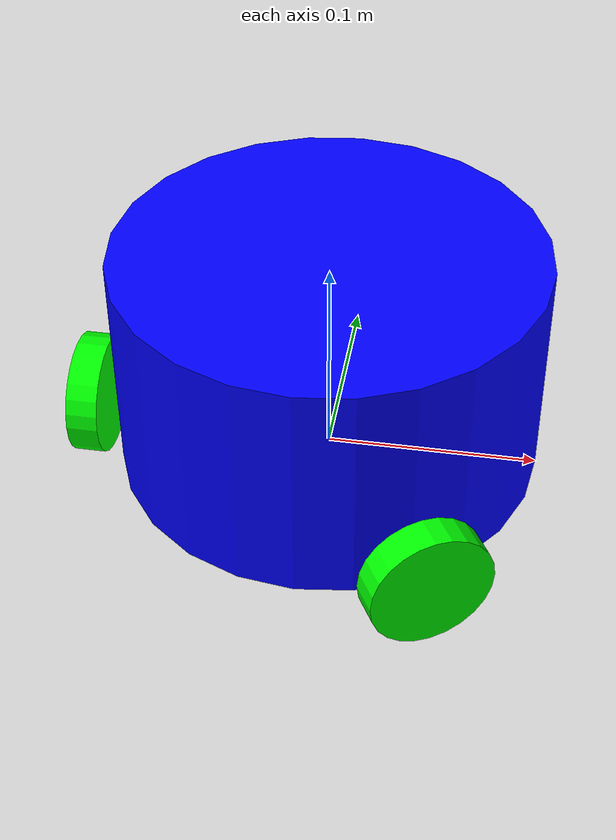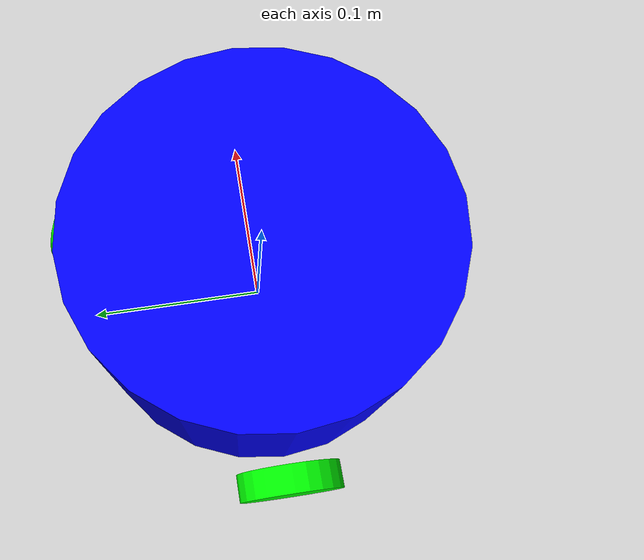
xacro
<?xml version="1.0"?>
<robot xmlns:xacro="http://ros.org/wiki/xacro">

  <!-- ==================== Parámetros ==================== -->
  <xacro:property name="radio_rueda" value="0.029"/>
  <xacro:property name="ancho_rueda"  value="0.015"/>
  <xacro:property name="masa_rueda"  value="0.3"/>
  <xacro:property name="radio_base"  value="0.10"/>
  <xacro:property name="alto_base"  value="0.11"/>
  <xacro:property name="centro_a_rueda" value="0.115"/>

  <!-- Colores -->
  <xacro:property name="color_chasis" value="0 0 1 1"/>     <!-- Azul -->
  <xacro:property name="color_rueda" value="0 1 0 1"/>      <!-- Negro -->

  <!-- ==================== Chasis base ==================== -->
  <link name="base_link">
    <inertial>
      <mass value="3.0"/>
      <origin xyz="0 0 ${alto_base/2}" rpy="0 0 0"/>
      <inertia ixx="0.02" iyy="0.02" izz="0.04" ixy="0.0" ixz="0.0" iyz="0.0"/>
    </inertial>
    <collision>
      <geometry>
        <cylinder length="${alto_base}" radius="${radio_base}"/>
      </geometry>
      <origin xyz="0 0 ${alto_base/2}" rpy="0 0 0"/>
    </collision>
    <visual>
      <geometry>
        <cylinder length="${alto_base}" radius="${radio_base}"/>
      </geometry>
      <origin xyz="0 0 ${alto_base/2}" rpy="0 0 0"/>
      <material name="color_chasis">
        <color rgba="${color_chasis}"/>
      </material>
    </visual>
  </link>

  <!-- ==================== Macro para ruedas ==================== -->
  <xacro:macro name="rueda" params="link_name joint_name angulo_grados">
    <xacro:property name="angulo_rad" value="${angulo_grados * (3.1415926 / 180.0)}"/>
    <xacro:property name="x_pos" value="${centro_a_rueda * cos(angulo_rad)}"/>
    <xacro:property name="y_pos" value="${centro_a_rueda * sin(angulo_rad)}"/>

    <link name="${link_name}">
      <inertial>
        <mass value="${masa_rueda}"/>
        <origin xyz="0 0 0" rpy="0 0 0"/>
        <inertia ixx="${(masa_rueda/12) * (3*radio_rueda*radio_rueda + ancho_rueda*ancho_rueda)}" iyy="${(masa_rueda/12) * (3*radio_rueda*radio_rueda + ancho_rueda*ancho_rueda)}" izz="${(masa_rueda/2) * (radio_rueda*radio_rueda)}" ixy="0.0" ixz="0.0" iyz="0.0"/>
      </inertial>
      <collision>
      <geometry>
        <cylinder length="${ancho_rueda}" radius="${radio_rueda}"/>
      </geometry>
      <origin xyz="0 0 0" rpy="0 0 0"/>
      <surface>
        <friction>
          <ode>
            <mu>0.9</mu>     <!-- Alta friccion en sentido de giro-->
            <mu2>0.0</mu2>    <!-- Baja friccion en sentido perpendicular al giro-->
          </ode>
        </friction>
      </surface>
      </collision>
      <visual>
        <geometry>
          <cylinder length="${ancho_rueda}" radius="${radio_rueda}"/>
        </geometry>
        <origin xyz="0 0 0" rpy="0 0 0"/>
        <material name="color_rueda">
          <color rgba="${color_rueda}"/>
        </material>
      </visual>
    </link>

    <joint name="${joint_name}" type="continuous">
      <parent link="base_link"/>
      <child link="${link_name}"/>
      <origin xyz="${x_pos} ${y_pos} ${ancho_rueda}" rpy="0 1.5708 ${angulo_rad}"/>
      <axis xyz="0 0 1"/>
    </joint>

  </xacro:macro>

  <!-- ==================== Llamadas a ruedas ==================== -->
  <xacro:rueda link_name="rueda1" joint_name="joint1" angulo_grados="60"/>
  <xacro:rueda link_name="rueda2" joint_name="joint2" angulo_grados="180"/>
  <xacro:rueda link_name="rueda3" joint_name="joint3" angulo_grados="300"/>

</robot>
